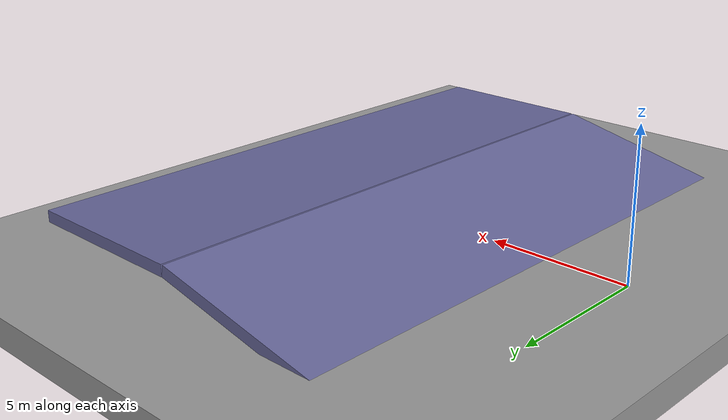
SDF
<?xml version="1.0" ?>
<sdf version="1.9">
  <world name="Seongdong_gu">
    <!-- 운용 월드(Seongdong_gu_aligned)와 같은 물리 설정을 쓴다.
         기본 충돌 검출기로는 Go2 가 RL 진입 직후 옆으로 넘어졌다
         (IMU 기울기 94도). 발 접촉이 많은 4족은 검출기 영향을 크게 받는다. -->
    <physics name="1ms" type="ignored">
      <dart>
        <collision_detector>bullet</collision_detector>
      </dart>
    </physics>
    <plugin filename="gz-sim-physics-system" name="gz::sim::systems::Physics"/>
    <plugin filename="gz-sim-user-commands-system"
            name="gz::sim::systems::UserCommands"/>
    <plugin filename="gz-sim-scene-broadcaster-system"
            name="gz::sim::systems::SceneBroadcaster"/>
    <plugin filename="gz-sim-sensors-system" name="gz::sim::systems::Sensors">
      <render_engine>ogre2</render_engine>
    </plugin>
    <plugin filename="gz-sim-imu-system" name="gz::sim::systems::Imu"/>
    <plugin filename="gz-sim-forcetorque-system"
            name="gz::sim::systems::ForceTorque"/>
    <plugin filename="gz-sim-contact-system" name="gz::sim::systems::Contact"/>
    <light type="directional" name="sun">
      <cast_shadows>true</cast_shadows>
      <pose>0 0 10 0 0 0</pose>
      <diffuse>0.8 0.8 0.8 1</diffuse>
      <specular>0.2 0.2 0.2 1</specular>
      <direction>-0.5 0.1 -0.9</direction>
    </light>
    <!-- 지면은 무한 plane 이 아니라 큰 박스를 쓴다. plane 은 4족 발 접촉에서
         불안정했다(RL 진입 직후 전복). 박스는 접촉 판정이 단순하고 안정적이다. -->
    <model name="ground">
      <static>true</static>
      <pose>0 0 -0.5 0 0 0</pose>
      <link name="link">
        <collision name="collision">
          <geometry><box><size>200 60 1</size></box></geometry>
          <surface><friction><ode><mu>1.0</mu><mu2>1.0</mu2></ode></friction></surface>
        </collision>
        <visual name="visual">
          <geometry><box><size>200 60 1</size></box></geometry>
          <material><ambient>0.5 0.5 0.5 1</ambient><diffuse>0.6 0.6 0.6 1</diffuse></material>
        </visual>
      </link>
    </model>
    <model name="ramp">
      <static>true</static>
      <pose>5.958417661836448 0 0.4420401648633052 0 -0.20943951023931956 0</pose>
      <link name="link">
        <collision name="collision">
          <geometry><box><size>6.134043569190175 20.0 0.4</size></box></geometry>
          <surface><friction><ode><mu>1.0</mu><mu2>1.0</mu2></ode></friction></surface>
        </collision>
        <visual name="visual">
          <geometry><box><size>6.134043569190175 20.0 0.4</size></box></geometry>
          <material><ambient>0.3 0.3 0.4 1</ambient><diffuse>0.4 0.4 0.6 1</diffuse></material>
        </visual>
      </link>
    </model>
    <model name="summit">
      <static>true</static>
      <pose>12.0 0 1.0753393700201328 0 0 0</pose>
      <link name="link">
        <collision name="collision">
          <geometry><box><size>6.0 20.0 0.4</size></box></geometry>
          <surface><friction><ode><mu>1.0</mu><mu2>1.0</mu2></ode></friction></surface>
        </collision>
        <visual name="visual">
          <geometry><box><size>6.0 20.0 0.4</size></box></geometry>
          <material><ambient>0.3 0.3 0.4 1</ambient><diffuse>0.4 0.4 0.6 1</diffuse></material>
        </visual>
      </link>
    </model>
  </world>
</sdf>
